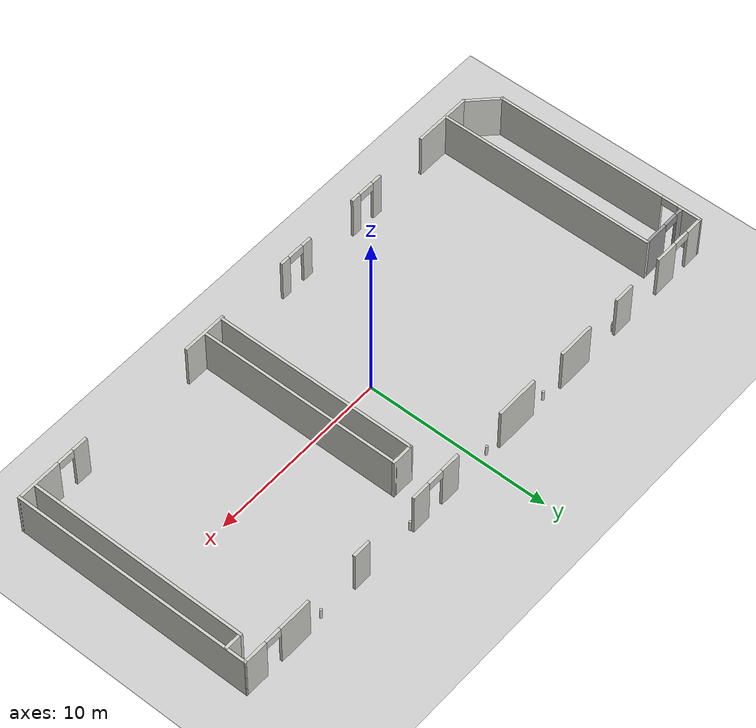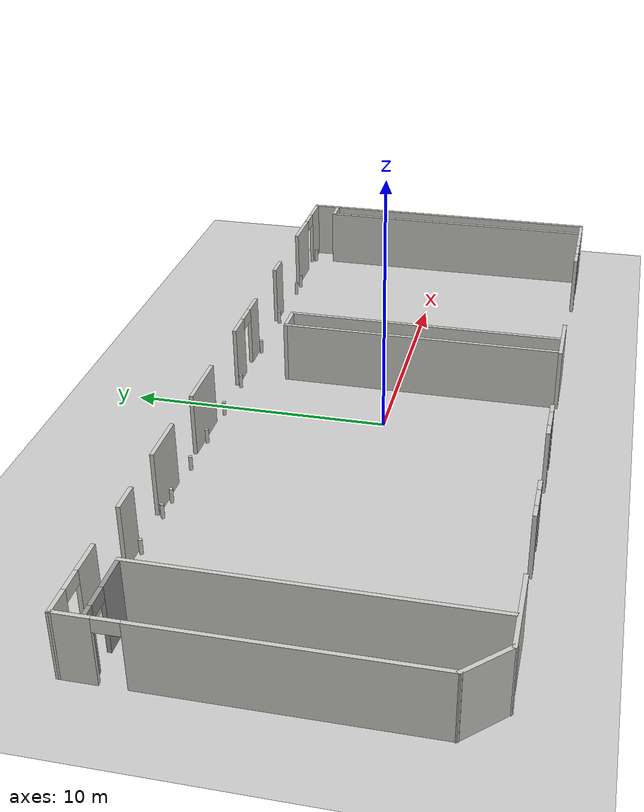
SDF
<sdf version="1.6">
 <world name="default">
  <plugin name="disable_physics" filename="libgazebo_no_physics_plugin.so"/>
  <light name="sun" type="directional">
   <pose>0 0 10 0 -0 0</pose>
   <diffuse>0.8 0.8 0.8 1</diffuse>
   <specular>0.1 0.1 0.1 1</specular>
   <attenuation>
    <range>1000</range>
    <constant>0.9</constant>
    <linear>0.01</linear>
    <quadratic>0.001</quadratic>
   </attenuation>
   <direction>-0.5 0.5 -1</direction>
  </light>
  <model name="ground_plane">
   <static>1</static>
   <link name="link">
    <collision name="collision">
     <geometry><plane><normal>0 0 1</normal><size>100 100</size></plane></geometry>
     <surface><friction><ode><mu>100</mu><mu2>50</mu2></ode></friction></surface>
    </collision>
    <visual name="visual">
     <cast_shadows>0</cast_shadows>
     <geometry><plane><normal>0 0 1</normal><size>100 100</size></plane></geometry>
     <material>
      <script><uri>file://media/materials/scripts/gazebo.material</uri><name>Gazebo/Grey</name></script>
     </material>
    </visual>
   </link>
  </model>
  <gravity>0 0 -9.8</gravity>
  <magnetic_field>6e-06 2.3e-05 -4.2e-05</magnetic_field>
  <atmosphere type="adiabatic"/>
  <physics name="default_physics" default="1" type="ode">
   <max_step_size>0.02</max_step_size>
   <real_time_factor>1</real_time_factor>
   <real_time_update_rate>50</real_time_update_rate>
  </physics>
  <scene><ambient>0.4 0.4 0.4 1</ambient><background>0.7 0.7 0.7 1</background><shadows>1</shadows></scene>
  <spherical_coordinates>
   <surface_model>EARTH_WGS84</surface_model>
   <latitude_deg>0</latitude_deg>
   <longitude_deg>0</longitude_deg>
   <elevation>0</elevation>
   <heading_deg>0</heading_deg>
  </spherical_coordinates>
  <model name="South_Prep_Area">
   <link name="Boundary_wall_1">
    <collision name="Boundary_wall_1_Collision">
     <geometry><box><size>30.449 0.989633 4.00448</size></box></geometry>
    </collision>
    <pose>2.944610 -6.974570 0 0 0 0</pose>
   </link>
   <link name="Boundary_wall_2">
    <collision name="Boundary_wall_2_Collision">
     <geometry><box><size>30.449 0.989633 4.00448</size></box></geometry>
    </collision>
    <pose>2.944610 7.048810 0 0 0 0</pose>
   </link>
   <link name="Bollard_1">
    <collision name="Bollard_1_Collision">
     <geometry><cylinder><radius>0.07</radius><length>1.1</length></cylinder></geometry>
     <laser_retro>9000.0</laser_retro>
    </collision>
    <visual name="Bollard_1_Visual">
     <geometry><cylinder><radius>0.07</radius><length>1.1</length></cylinder></geometry>
     <material>
      <script><uri>file://media/materials/scripts/gazebo.material</uri><name>Gazebo/CeilingTiled</name></script>
      <ambient>1 1 1 1</ambient>
     </material>
    </visual>
    <pose>-9.629 6.278398 0 0 0 0</pose>
   </link>
   <link name="Bollard_2">
    <collision name="Bollard_2_Collision">
     <geometry><cylinder><radius>0.07</radius><length>1.1</length></cylinder></geometry>
     <laser_retro>9000.0</laser_retro>
    </collision>
    <visual name="Bollard_2_Visual">
     <geometry><cylinder><radius>0.07</radius><length>1.1</length></cylinder></geometry>
     <material>
      <script><uri>file://media/materials/scripts/gazebo.material</uri><name>Gazebo/CeilingTiled</name></script>
      <ambient>1 1 1 1</ambient>
     </material>
    </visual>
    <pose>-7.56737 6.278 0 0 0 0</pose>
   </link>
   <link name="Bollard_3">
    <collision name="Bollard_3_Collision">
     <geometry><cylinder><radius>0.07</radius><length>1.1</length></cylinder></geometry>
     <laser_retro>9000.0</laser_retro>
    </collision>
    <visual name="Bollard_3_Visual">
     <geometry><cylinder><radius>0.07</radius><length>1.1</length></cylinder></geometry>
     <material>
      <script><uri>file://media/materials/scripts/gazebo.material</uri><name>Gazebo/CeilingTiled</name></script>
      <ambient>1 1 1 1</ambient>
     </material>
    </visual>
    <pose>-6.612 6.287398 0 0 0 0</pose>
   </link>
   <link name="Bollard_4">
    <collision name="Bollard_4_Collision">
     <geometry><cylinder><radius>0.07</radius><length>1.1</length></cylinder></geometry>
     <laser_retro>9000.0</laser_retro>
    </collision>
    <visual name="Bollard_4_Visual">
     <geometry><cylinder><radius>0.07</radius><length>1.1</length></cylinder></geometry>
     <material>
      <script><uri>file://media/materials/scripts/gazebo.material</uri><name>Gazebo/CeilingTiled</name></script>
      <ambient>1 1 1 1</ambient>
     </material>
    </visual>
    <pose>-4.5 6.301398 0 0 0 0</pose>
   </link>
   <link name="Bollard_5">
    <collision name="Bollard_5_Collision">
     <geometry><cylinder><radius>0.07</radius><length>1.1</length></cylinder></geometry>
     <laser_retro>9000.0</laser_retro>
    </collision>
    <visual name="Bollard_5_Visual">
     <geometry><cylinder><radius>0.07</radius><length>1.1</length></cylinder></geometry>
     <material>
      <script><uri>file://media/materials/scripts/gazebo.material</uri><name>Gazebo/CeilingTiled</name></script>
      <ambient>1 1 1 1</ambient>
     </material>
    </visual>
    <pose>-2.591 6.303398 0 0 0 0</pose>
   </link>
   <link name="Bollard_6">
    <collision name="Bollard_6_Collision">
     <geometry><cylinder><radius>0.07</radius><length>1.1</length></cylinder></geometry>
     <laser_retro>9000.0</laser_retro>
    </collision>
    <visual name="Bollard_6_Visual">
     <geometry><cylinder><radius>0.07</radius><length>1.1</length></cylinder></geometry>
     <material>
      <script><uri>file://media/materials/scripts/gazebo.material</uri><name>Gazebo/CeilingTiled</name></script>
      <ambient>1 1 1 1</ambient>
     </material>
    </visual>
    <pose>-0.493 6.283398 0 0 0 0</pose>
   </link>
   <link name="Bollard_7">
    <collision name="Bollard_7_Collision">
     <geometry><cylinder><radius>0.07</radius><length>1.1</length></cylinder></geometry>
     <laser_retro>9000.0</laser_retro>
    </collision>
    <visual name="Bollard_7_Visual">
     <geometry><cylinder><radius>0.07</radius><length>1.1</length></cylinder></geometry>
     <material>
      <script><uri>file://media/materials/scripts/gazebo.material</uri><name>Gazebo/CeilingTiled</name></script>
      <ambient>1 1 1 1</ambient>
     </material>
    </visual>
    <pose>1.73 6.283398 0 0 0 0</pose>
   </link>
   <link name="Bollard_8">
    <collision name="Bollard_8_Collision">
     <geometry><cylinder><radius>0.07</radius><length>1.1</length></cylinder></geometry>
     <laser_retro>9000.0</laser_retro>
    </collision>
    <visual name="Bollard_8_Visual">
     <geometry><cylinder><radius>0.07</radius><length>1.1</length></cylinder></geometry>
     <material>
      <script><uri>file://media/materials/scripts/gazebo.material</uri><name>Gazebo/CeilingTiled</name></script>
      <ambient>1 1 1 1</ambient>
     </material>
    </visual>
    <pose>4.811 6.303398 0 0 0 0</pose>
   </link>
   <link name="Bollard_9">
    <collision name="Bollard_9_Collision">
     <geometry><cylinder><radius>0.07</radius><length>1.1</length></cylinder></geometry>
     <laser_retro>9000.0</laser_retro>
    </collision>
    <visual name="Bollard_9_Visual">
     <geometry><cylinder><radius>0.07</radius><length>1.1</length></cylinder></geometry>
     <material>
      <script><uri>file://media/materials/scripts/gazebo.material</uri><name>Gazebo/CeilingTiled</name></script>
      <ambient>1 1 1 1</ambient>
     </material>
    </visual>
    <pose>7.696 6.303398 0 0 0 0</pose>
   </link>
   <link name="Bollard_10">
    <collision name="Bollard_10_Collision">
     <geometry><cylinder><radius>0.07</radius><length>1.1</length></cylinder></geometry>
     <laser_retro>9000.0</laser_retro>
    </collision>
    <visual name="Bollard_10_Visual">
     <geometry><cylinder><radius>0.07</radius><length>1.1</length></cylinder></geometry>
     <material>
      <script><uri>file://media/materials/scripts/gazebo.material</uri><name>Gazebo/CeilingTiled</name></script>
      <ambient>1 1 1 1</ambient>
     </material>
    </visual>
    <pose>10.781 6.313398 0 0 0 0</pose>
   </link>
   <link name="Bollard_11">
    <collision name="Bollard_11_Collision">
     <geometry><cylinder><radius>0.07</radius><length>1.1</length></cylinder></geometry>
     <laser_retro>9000.0</laser_retro>
    </collision>
    <visual name="Bollard_11_Visual">
     <geometry><cylinder><radius>0.07</radius><length>1.1</length></cylinder></geometry>
     <material>
      <script><uri>file://media/materials/scripts/gazebo.material</uri><name>Gazebo/CeilingTiled</name></script>
      <ambient>1 1 1 1</ambient>
     </material>
    </visual>
    <pose>11.62033 6.313398 0 0 0 0</pose>
   </link>
   <link name="Bollard_12">
    <collision name="Bollard_12_Collision">
     <geometry><cylinder><radius>0.07</radius><length>1.1</length></cylinder></geometry>
     <laser_retro>9000.0</laser_retro>
    </collision>
    <visual name="Bollard_12_Visual">
     <geometry><cylinder><radius>0.07</radius><length>1.1</length></cylinder></geometry>
     <material>
      <script><uri>file://media/materials/scripts/gazebo.material</uri><name>Gazebo/CeilingTiled</name></script>
      <ambient>1 1 1 1</ambient>
     </material>
    </visual>
    <pose>14.748 6.323398 0 0 0 0</pose>
   </link>
   <link name="Wall_49">
    <collision name="Wall_49_Collision">
     <geometry><box><size>13.1 0.15 2.5</size></box></geometry>
     <pose>0 0 1.25 0 -0 0</pose>
    </collision>
    <visual name="Wall_49_Visual">
     <pose>0 0 1.25 0 -0 0</pose>
     <geometry><box><size>13.1 0.15 2.5</size></box></geometry>
     <material>
      <script><uri>file://media/materials/scripts/gazebo.material</uri><name>Gazebo/CeilingTiled</name></script>
      <ambient>1 1 1 1</ambient>
     </material>
    </visual>
    <pose>15.7321 -0.001267 0 0 0 -1.56944</pose>
   </link>
   <link name="Wall_52">
    <pose>13.6908 -6.47627 0 0 -0 3.14159</pose>
    <visual name="Wall_52_Visual_0">
     <pose>-0.886307 0 1.25 0 -0 0</pose>
     <geometry><box><size>2.47739 0.15 2.5</size></box></geometry>
     <material>
      <script><uri>file://media/materials/scripts/gazebo.material</uri><name>Gazebo/CeilingTiled</name></script>
      <ambient>1 1 1 1</ambient>
     </material>
    </visual>
    <collision name="Wall_52_Collision_0">
     <geometry><box><size>2.47739 0.15 2.5</size></box></geometry>
     <pose>-0.886307 0 1.25 0 -0 0</pose>
    </collision>
    <visual name="Wall_52_Visual_1">
     <pose>1.68869 0 1.25 0 -0 0</pose>
     <geometry><box><size>0.872614 0.15 2.5</size></box></geometry>
     <material>
      <script><uri>file://media/materials/scripts/gazebo.material</uri><name>Gazebo/CeilingTiled</name></script>
      <ambient>1 1 1 1</ambient>
     </material>
    </visual>
    <collision name="Wall_52_Collision_1">
     <geometry><box><size>0.872614 0.15 2.5</size></box></geometry>
     <pose>1.68869 0 1.25 0 -0 0</pose>
    </collision>
    <visual name="Wall_52_Visual_2">
     <pose>0.802386 0 2.25 0 -0 0</pose>
     <geometry><box><size>0.9 0.15 0.5</size></box></geometry>
     <material>
      <script><uri>file://media/materials/scripts/gazebo.material</uri><name>Gazebo/CeilingTiled</name></script>
      <ambient>1 1 1 1</ambient>
     </material>
    </visual>
    <collision name="Wall_52_Collision_2">
     <geometry><box><size>0.9 0.15 0.5</size></box></geometry>
     <pose>0.802386 0 2.25 0 -0 0</pose>
    </collision>
   </link>
   <link name="Wall_54">
    <collision name="Wall_54_Collision">
     <geometry><box><size>2.5 0.15 2.5</size></box></geometry>
     <pose>0 0 1.25 0 -0 0</pose>
    </collision>
    <visual name="Wall_54_Visual">
     <pose>0 0 1.25 0 -0 0</pose>
     <geometry><box><size>2.5 0.15 2.5</size></box></geometry>
     <material>
      <script><uri>file://media/materials/scripts/gazebo.material</uri><name>Gazebo/CeilingTiled</name></script>
      <ambient>1 1 1 1</ambient>
     </material>
    </visual>
    <pose>3.90174 -6.44562 0 0 -0 3.14159</pose>
   </link>
   <link name="Wall_56">
    <pose>-2.31678 -6.45878 0 0 -0 3.14159</pose>
    <visual name="Wall_56_Visual_0">
     <pose>-0.748039 0 1.25 0 -0 0</pose>
     <geometry><box><size>0.544239 0.15 2.5</size></box></geometry>
     <material>
      <script><uri>file://media/materials/scripts/gazebo.material</uri><name>Gazebo/CeilingTiled</name></script>
      <ambient>1 1 1 1</ambient>
     </material>
    </visual>
    <collision name="Wall_56_Collision_0">
     <geometry><box><size>0.544239 0.15 2.5</size></box></geometry>
     <pose>-0.748039 0 1.25 0 -0 0</pose>
    </collision>
    <visual name="Wall_56_Visual_1">
     <pose>0.72212 0 1.25 0 -0 0</pose>
     <geometry><box><size>0.596078 0.15 2.5</size></box></geometry>
     <material>
      <script><uri>file://media/materials/scripts/gazebo.material</uri><name>Gazebo/CeilingTiled</name></script>
      <ambient>1 1 1 1</ambient>
     </material>
    </visual>
    <collision name="Wall_56_Collision_1">
     <geometry><box><size>0.596078 0.15 2.5</size></box></geometry>
     <pose>0.72212 0 1.25 0 -0 0</pose>
    </collision>
    <visual name="Wall_56_Visual_2">
     <pose>-0.025919 0 2.25 0 -0 0</pose>
     <geometry><box><size>0.9 0.15 0.5</size></box></geometry>
     <material>
      <script><uri>file://media/materials/scripts/gazebo.material</uri><name>Gazebo/CeilingTiled</name></script>
      <ambient>1 1 1 1</ambient>
     </material>
    </visual>
    <collision name="Wall_56_Collision_2">
     <geometry><box><size>0.9 0.15 0.5</size></box></geometry>
     <pose>-0.025919 0 2.25 0 -0 0</pose>
    </collision>
   </link>
   <link name="Wall_59">
    <pose>-7.26693 -6.45087 0 0 -0 3.14159</pose>
    <visual name="Wall_59_Visual_0">
     <pose>-0.744675 0 1.25 0 -0 0</pose>
     <geometry><box><size>0.547163 0.15 2.5</size></box></geometry>
     <material>
      <script><uri>file://media/materials/scripts/gazebo.material</uri><name>Gazebo/CeilingTiled</name></script>
      <ambient>1 1 1 1</ambient>
     </material>
    </visual>
    <collision name="Wall_59_Collision_0">
     <geometry><box><size>0.547163 0.15 2.5</size></box></geometry>
     <pose>-0.744675 0 1.25 0 -0 0</pose>
    </collision>
    <visual name="Wall_59_Visual_1">
     <pose>0.723581 0 1.25 0 -0 0</pose>
     <geometry><box><size>0.58935 0.15 2.5</size></box></geometry>
     <material>
      <script><uri>file://media/materials/scripts/gazebo.material</uri><name>Gazebo/CeilingTiled</name></script>
      <ambient>1 1 1 1</ambient>
     </material>
    </visual>
    <collision name="Wall_59_Collision_1">
     <geometry><box><size>0.58935 0.15 2.5</size></box></geometry>
     <pose>0.723581 0 1.25 0 -0 0</pose>
    </collision>
    <visual name="Wall_59_Visual_2">
     <pose>-0.021093 0 2.25 0 -0 0</pose>
     <geometry><box><size>0.9 0.15 0.5</size></box></geometry>
     <material>
      <script><uri>file://media/materials/scripts/gazebo.material</uri><name>Gazebo/CeilingTiled</name></script>
      <ambient>1 1 1 1</ambient>
     </material>
    </visual>
    <collision name="Wall_59_Collision_2">
     <geometry><box><size>0.9 0.15 0.5</size></box></geometry>
     <pose>-0.021093 0 2.25 0 -0 0</pose>
    </collision>
   </link>
   <link name="Wall_61">
    <collision name="Wall_61_Collision">
     <geometry><box><size>3.25 0.15 2.5</size></box></geometry>
     <pose>0 0 1.25 0 -0 0</pose>
    </collision>
    <visual name="Wall_61_Visual">
     <pose>0 0 1.25 0 -0 0</pose>
     <geometry><box><size>3.25 0.15 2.5</size></box></geometry>
     <material>
      <script><uri>file://media/materials/scripts/gazebo.material</uri><name>Gazebo/CeilingTiled</name></script>
      <ambient>1 1 1 1</ambient>
     </material>
    </visual>
    <pose>-12.8517 -6.46767 0 0 -0 3.14159</pose>
   </link>
   <link name="Wall_62">
    <collision name="Wall_62_Collision">
     <geometry><box><size>2 0.15 2.5</size></box></geometry>
     <pose>0 0 1.25 0 -0 0</pose>
    </collision>
    <visual name="Wall_62_Visual">
     <pose>0 0 1.25 0 -0 0</pose>
     <geometry><box><size>2 0.15 2.5</size></box></geometry>
     <material>
      <script><uri>file://media/materials/scripts/gazebo.material</uri><name>Gazebo/CeilingTiled</name></script>
      <ambient>1 1 1 1</ambient>
     </material>
    </visual>
    <pose>-15.0558 -5.81359 0 0 -0 2.35619</pose>
   </link>
   <link name="Wall_63">
    <pose>-15.7183 0.657107 0 0 -0 1.57224</pose>
    <visual name="Wall_63_Visual_0">
     <pose>-1.10802 0 1.25 0 -0 0</pose>
     <geometry><box><size>9.56721 0.15 2.5</size></box></geometry>
     <material>
      <script><uri>file://media/materials/scripts/gazebo.material</uri><name>Gazebo/CeilingTiled</name></script>
      <ambient>1 1 1 1</ambient>
     </material>
    </visual>
    <collision name="Wall_63_Collision_0">
     <geometry><box><size>9.56721 0.15 2.5</size></box></geometry>
     <pose>-1.10802 0 1.25 0 -0 0</pose>
    </collision>
    <visual name="Wall_63_Visual_1">
     <pose>5.23361 0 1.25 0 -0 0</pose>
     <geometry><box><size>1.31604 0.15 2.5</size></box></geometry>
     <material>
      <script><uri>file://media/materials/scripts/gazebo.material</uri><name>Gazebo/CeilingTiled</name></script>
      <ambient>1 1 1 1</ambient>
     </material>
    </visual>
    <collision name="Wall_63_Collision_1">
     <geometry><box><size>1.31604 0.15 2.5</size></box></geometry>
     <pose>5.23361 0 1.25 0 -0 0</pose>
    </collision>
    <visual name="Wall_63_Visual_2">
     <pose>4.12559 0 2.25 0 -0 0</pose>
     <geometry><box><size>0.9 0.15 0.5</size></box></geometry>
     <material>
      <script><uri>file://media/materials/scripts/gazebo.material</uri><name>Gazebo/CeilingTiled</name></script>
      <ambient>1 1 1 1</ambient>
     </material>
    </visual>
    <collision name="Wall_63_Collision_2">
     <geometry><box><size>0.9 0.15 0.5</size></box></geometry>
     <pose>4.12559 0 2.25 0 -0 0</pose>
    </collision>
   </link>
   <link name="Wall_65">
    <pose>-14.343 5.45532 0 0 -0 0</pose>
    <visual name="Wall_65_Visual_0">
     <pose>-1.1238 0 1.25 0 -0 0</pose>
     <geometry><box><size>0.417403 0.15 2.5</size></box></geometry>
     <material>
      <script><uri>file://media/materials/scripts/gazebo.material</uri><name>Gazebo/Grey</name></script>
      <ambient>1 1 1 1</ambient>
     </material>
    </visual>
    <collision name="Wall_65_Collision_0">
     <geometry><box><size>0.417403 0.15 2.5</size></box></geometry>
     <pose>-1.1238 0 1.25 0 -0 0</pose>
    </collision>
    <visual name="Wall_65_Visual_1">
     <pose>0.628849 0 1.25 0 -0 0</pose>
     <geometry><box><size>1.4073 0.15 2.5</size></box></geometry>
     <material>
      <script><uri>file://media/materials/scripts/gazebo.material</uri><name>Gazebo/Grey</name></script>
      <ambient>1 1 1 1</ambient>
     </material>
    </visual>
    <collision name="Wall_65_Collision_1">
     <geometry><box><size>1.4073 0.15 2.5</size></box></geometry>
     <pose>0.628849 0 1.25 0 -0 0</pose>
    </collision>
    <visual name="Wall_65_Visual_2">
     <pose>-0.494949 0 2.25 0 -0 0</pose>
     <geometry><box><size>0.840295 0.15 0.5</size></box></geometry>
     <material>
      <script><uri>file://media/materials/scripts/gazebo.material</uri><name>Gazebo/Grey</name></script>
      <ambient>1 1 1 1</ambient>
     </material>
    </visual>
    <collision name="Wall_65_Collision_2">
     <geometry><box><size>0.840295 0.15 0.5</size></box></geometry>
     <pose>-0.494949 0 2.25 0 -0 0</pose>
    </collision>
   </link>
   <link name="Wall_67">
    <collision name="Wall_67_Collision">
     <geometry><box><size>12 0.15 2.5</size></box></geometry>
     <pose>0 0 1.25 0 -0 0</pose>
    </collision>
    <visual name="Wall_67_Visual">
     <pose>0 0 1.25 0 -0 0</pose>
     <geometry><box><size>12 0.15 2.5</size></box></geometry>
     <material>
      <script><uri>file://media/materials/scripts/gazebo.material</uri><name>Gazebo/CeilingTiled</name></script>
      <ambient>1 1 1 1</ambient>
     </material>
    </visual>
    <pose>-13.0855 -0.469677 0 0 0 -1.5708</pose>
   </link>
   <link name="Wall_69">
    <collision name="Wall_69_Collision">
     <geometry><box><size>11.2 0.15 2.5</size></box></geometry>
     <pose>0 0 1.25 0 -0 0</pose>
    </collision>
    <visual name="Wall_69_Visual">
     <pose>0 0 1.25 0 -0 0</pose>
     <geometry><box><size>11.2 0.15 2.5</size></box></geometry>
     <material>
      <script><uri>file://media/materials/scripts/gazebo.material</uri><name>Gazebo/CeilingTiled</name></script>
      <ambient>1 1 1 1</ambient>
     </material>
    </visual>
    <pose>3.89376 -0.918138 0 0 -0 1.5708</pose>
   </link>
   <link name="Wall_70">
    <collision name="Wall_70_Collision">
     <geometry><box><size>1.25 0.15 2.5</size></box></geometry>
     <pose>0 0 1.25 0 -0 0</pose>
    </collision>
    <visual name="Wall_70_Visual">
     <pose>0 0 1.25 0 -0 0</pose>
     <geometry><box><size>1.25 0.15 2.5</size></box></geometry>
     <material>
      <script><uri>file://media/materials/scripts/gazebo.material</uri><name>Gazebo/CeilingTiled</name></script>
      <ambient>1 1 1 1</ambient>
     </material>
    </visual>
    <pose>3.34379 4.6068 0 0 0 -3.14147</pose>
   </link>
   <link name="Wall_73">
    <collision name="Wall_73_Collision">
     <geometry><box><size>11.1 0.15 2.5</size></box></geometry>
     <pose>0 0 1.25 0 -0 0</pose>
    </collision>
    <visual name="Wall_73_Visual">
     <pose>0 0 1.25 0 -0 0</pose>
     <geometry><box><size>11.1 0.15 2.5</size></box></geometry>
     <material>
      <script><uri>file://media/materials/scripts/gazebo.material</uri><name>Gazebo/CeilingTiled</name></script>
      <ambient>1 1 1 1</ambient>
     </material>
    </visual>
    <pose>2.79383 -0.868267 0 0 0 -1.5708</pose>
   </link>
   <link name="Wall_75">
    <pose>-14.1767 6.47373 0 0 -0 0</pose>
    <visual name="Wall_75_Visual_0">
     <pose>-1.09698 0 1.25 0 -0 0</pose>
     <geometry><box><size>1.05603 0.15 2.5</size></box></geometry>
     <material>
      <script><uri>file://media/materials/scripts/gazebo.material</uri><name>Gazebo/CeilingTiled</name></script>
      <ambient>1 1 1 1</ambient>
     </material>
    </visual>
    <collision name="Wall_75_Collision_0">
     <geometry><box><size>1.05603 0.15 2.5</size></box></geometry>
     <pose>-1.09698 0 1.25 0 -0 0</pose>
    </collision>
    <visual name="Wall_75_Visual_1">
     <pose>0.978016 0 1.25 0 -0 0</pose>
     <geometry><box><size>1.29397 0.15 2.5</size></box></geometry>
     <material>
      <script><uri>file://media/materials/scripts/gazebo.material</uri><name>Gazebo/CeilingTiled</name></script>
      <ambient>1 1 1 1</ambient>
     </material>
    </visual>
    <collision name="Wall_75_Collision_1">
     <geometry><box><size>1.29397 0.15 2.5</size></box></geometry>
     <pose>0.978016 0 1.25 0 -0 0</pose>
    </collision>
    <visual name="Wall_75_Visual_2">
     <pose>-0.118969 0 2.25 0 -0 0</pose>
     <geometry><box><size>0.9 0.15 0.5</size></box></geometry>
     <material>
      <script><uri>file://media/materials/scripts/gazebo.material</uri><name>Gazebo/CeilingTiled</name></script>
      <ambient>1 1 1 1</ambient>
     </material>
    </visual>
    <collision name="Wall_75_Collision_2">
     <geometry><box><size>0.9 0.15 0.5</size></box></geometry>
     <pose>-0.118969 0 2.25 0 -0 0</pose>
    </collision>
   </link>
   <link name="Wall_79">
    <collision name="Wall_79_Collision">
     <geometry><box><size>1.15 0.15 2.5</size></box></geometry>
     <pose>0 0 1.25 0 -0 0</pose>
    </collision>
    <visual name="Wall_79_Visual">
     <pose>0 0 1.25 0 -0 0</pose>
     <geometry><box><size>1.15 0.15 2.5</size></box></geometry>
     <material>
      <script><uri>file://media/materials/scripts/gazebo.material</uri><name>Gazebo/CeilingTiled</name></script>
      <ambient>1 1 1 1</ambient>
     </material>
    </visual>
    <pose>-10.0252 6.47073 0 0 -0 0</pose>
   </link>
   <link name="Wall_81">
    <collision name="Wall_81_Collision">
     <geometry><box><size>2.05 0.15 2.5</size></box></geometry>
     <pose>0 0 1.25 0 -0 0</pose>
    </collision>
    <visual name="Wall_81_Visual">
     <pose>0 0 1.25 0 -0 0</pose>
     <geometry><box><size>2.05 0.15 2.5</size></box></geometry>
     <material>
      <script><uri>file://media/materials/scripts/gazebo.material</uri><name>Gazebo/CeilingTiled</name></script>
      <ambient>1 1 1 1</ambient>
     </material>
    </visual>
    <pose>-6.48417 6.49873 0 0 -0 0</pose>
   </link>
   <link name="Wall_83">
    <collision name="Wall_83_Collision">
     <geometry><box><size>2.4 0.15 2.5</size></box></geometry>
     <pose>0 0 1.25 0 -0 0</pose>
    </collision>
    <visual name="Wall_83_Visual">
     <pose>0 0 1.25 0 -0 0</pose>
     <geometry><box><size>2.4 0.15 2.5</size></box></geometry>
     <material>
      <script><uri>file://media/materials/scripts/gazebo.material</uri><name>Gazebo/CeilingTiled</name></script>
      <ambient>1 1 1 1</ambient>
     </material>
    </visual>
    <pose>-2.31217 6.47073 0 0 -0 0</pose>
   </link>
   <link name="Wall_85">
    <pose>3.32383 6.46873 0 0 -0 0</pose>
    <visual name="Wall_85_Visual_0">
     <pose>-0.968075 0 1.25 0 -0 0</pose>
     <geometry><box><size>1.11385 0.15 2.5</size></box></geometry>
     <material>
      <script><uri>file://media/materials/scripts/gazebo.material</uri><name>Gazebo/CeilingTiled</name></script>
      <ambient>1 1 1 1</ambient>
     </material>
    </visual>
    <collision name="Wall_85_Collision_0">
     <geometry><box><size>1.11385 0.15 2.5</size></box></geometry>
     <pose>-0.968075 0 1.25 0 -0 0</pose>
    </collision>
    <visual name="Wall_85_Visual_1">
     <pose>1.00693 0 1.25 0 -0 0</pose>
     <geometry><box><size>1.03615 0.15 2.5</size></box></geometry>
     <material>
      <script><uri>file://media/materials/scripts/gazebo.material</uri><name>Gazebo/CeilingTiled</name></script>
      <ambient>1 1 1 1</ambient>
     </material>
    </visual>
    <collision name="Wall_85_Collision_1">
     <geometry><box><size>1.03615 0.15 2.5</size></box></geometry>
     <pose>1.00693 0 1.25 0 -0 0</pose>
    </collision>
    <visual name="Wall_85_Visual_2">
     <pose>0.03885 0 2.25 0 -0 0</pose>
     <geometry><box><size>0.9 0.15 0.5</size></box></geometry>
     <material>
      <script><uri>file://media/materials/scripts/gazebo.material</uri><name>Gazebo/CeilingTiled</name></script>
      <ambient>1 1 1 1</ambient>
     </material>
    </visual>
    <collision name="Wall_85_Collision_2">
     <geometry><box><size>0.9 0.15 0.5</size></box></geometry>
     <pose>0.03885 0 2.25 0 -0 0</pose>
    </collision>
   </link>
   <link name="Wall_87">
    <collision name="Wall_87_Collision">
     <geometry><box><size>1 0.15 2.5</size></box></geometry>
     <pose>0 0 1.25 0 -0 0</pose>
    </collision>
    <visual name="Wall_87_Visual">
     <pose>0 0 1.25 0 -0 0</pose>
     <geometry><box><size>1 0.15 2.5</size></box></geometry>
     <material>
      <script><uri>file://media/materials/scripts/gazebo.material</uri><name>Gazebo/CeilingTiled</name></script>
      <ambient>1 1 1 1</ambient>
     </material>
    </visual>
    <pose>8.27903 6.47231 0 0 -0 0</pose>
   </link>
   <link name="Wall_89">
    <pose>13.7613 6.48105 0 0 0 -0.003729</pose>
    <visual name="Wall_89_Visual_0">
     <pose>-1.12172 0 1.25 0 -0 0</pose>
     <geometry><box><size>1.8306 0.15 2.5</size></box></geometry>
     <material>
      <script><uri>file://media/materials/scripts/gazebo.material</uri><name>Gazebo/CeilingTiled</name></script>
      <ambient>1 1 1 1</ambient>
     </material>
    </visual>
    <collision name="Wall_89_Collision_0">
     <geometry><box><size>1.8306 0.15 2.5</size></box></geometry>
     <pose>-1.12172 0 1.25 0 -0 0</pose>
    </collision>
    <visual name="Wall_89_Visual_1">
     <pose>1.3653 0 1.25 0 -0 0</pose>
     <geometry><box><size>1.34344 0.15 2.5</size></box></geometry>
     <material>
      <script><uri>file://media/materials/scripts/gazebo.material</uri><name>Gazebo/CeilingTiled</name></script>
      <ambient>1 1 1 1</ambient>
     </material>
    </visual>
    <collision name="Wall_89_Collision_1">
     <geometry><box><size>1.34344 0.15 2.5</size></box></geometry>
     <pose>1.3653 0 1.25 0 -0 0</pose>
    </collision>
    <visual name="Wall_89_Visual_2">
     <pose>0.243581 0 2.25 0 -0 0</pose>
     <geometry><box><size>0.9 0.15 0.5</size></box></geometry>
     <material>
      <script><uri>file://media/materials/scripts/gazebo.material</uri><name>Gazebo/CeilingTiled</name></script>
      <ambient>1 1 1 1</ambient>
     </material>
    </visual>
    <collision name="Wall_89_Collision_2">
     <geometry><box><size>0.9 0.15 0.5</size></box></geometry>
     <pose>0.243581 0 2.25 0 -0 0</pose>
    </collision>
   </link>
   <link name="Wall_91">
    <collision name="Wall_91_Collision">
     <geometry><box><size>11.9 0.15 2.5</size></box></geometry>
     <pose>0 0 1.25 0 -0 0</pose>
    </collision>
    <visual name="Wall_91_Visual">
     <pose>0 0 1.25 0 -0 0</pose>
     <geometry><box><size>11.9 0.15 2.5</size></box></geometry>
     <material>
      <script><uri>file://media/materials/scripts/gazebo.material</uri><name>Gazebo/CeilingTiled</name></script>
      <ambient>1 1 1 1</ambient>
     </material>
    </visual>
    <pose>14.8298 -0.462267 0 0 -0 1.5708</pose>
   </link>
   <link name="Wall_93">
    <collision name="Wall_93_Collision">
     <geometry><box><size>1 0.15 2.5</size></box></geometry>
     <pose>0 0 1.25 0 -0 0</pose>
    </collision>
    <visual name="Wall_93_Visual">
     <pose>0 0 1.25 0 -0 0</pose>
     <geometry><box><size>1 0.15 2.5</size></box></geometry>
     <material>
      <script><uri>file://media/materials/scripts/gazebo.material</uri><name>Gazebo/CeilingTiled</name></script>
      <ambient>1 1 1 1</ambient>
     </material>
    </visual>
    <pose>15.2548 5.41273 0 0 -0 0</pose>
   </link>
   <static>1</static>
  </model>
 </world>
</sdf>
